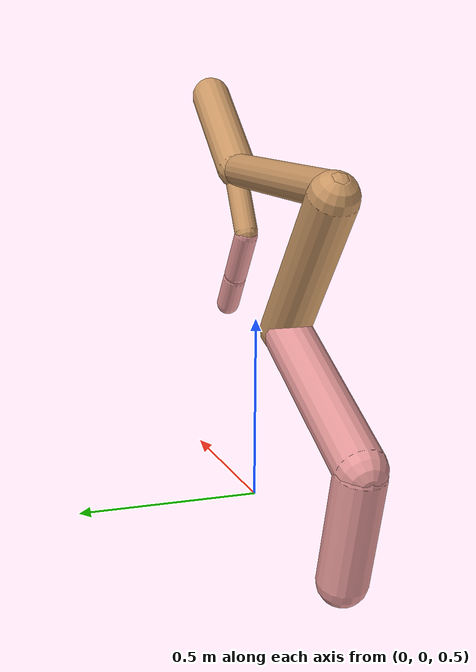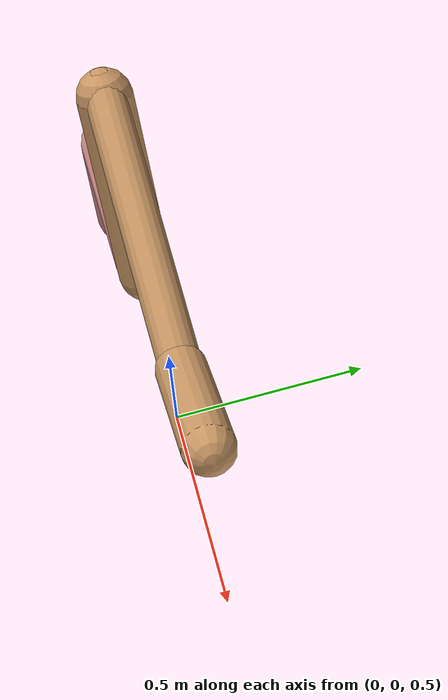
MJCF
<mujoco model="cheetah">
  <compiler angle="radian" coordinate="local" inertiafromgeom="true" settotalmass="14" />
  <default>
    <joint armature=".1" damping=".01" limited="true" solimplimit="0 .8 .03" solreflimit=".02 1" stiffness="8" />
    <geom conaffinity="0" condim="3" contype="1" friction="0.8 .1 .1" rgba="0.8 0.6 .4 1" solimp="0.0 0.8 0.01" solref="0.02 1" />
    <motor ctrllimited="true" ctrlrange="-1 1" />
  </default>
  <size nstack="300000" nuser_geom="1" />
  <option gravity="0 0 -9.81" timestep="0.01" />
  <worldbody>
    <body name="torso" pos="0.0 0.0 1.3950207202148839">
      <joint armature="0" axis="1 0 0" damping="0" limited="false" name="ignorex" pos="0 0 0" stiffness="0" type="slide" />
      <joint armature="0" axis="0 0 1" damping="0" limited="false" name="ignorez" pos="0 0 0" stiffness="0" type="slide" />
      <joint armature="0" axis="0 1 0" damping="0" limited="false" name="ignorey" pos="0 0 0" stiffness="0" type="hinge" />
      <geom fromto="-0.5 0.0 0.0 0.17877551535741126 0.0 0.0" name="torso" size="0.0456689279727606" type="capsule" />
      <geom axisangle="0 1 0 .87" name="head" pos="0.2787755153574113 0.0 0.1" size="0.05485620928697736 0.15" type="capsule" />

      <body name="bthigh" pos="-.5 0 0">
        <joint axis="0 1 0" damping="6" name="bthigh" pos="0 0 0" range="-.52 1.05" stiffness="240" type="hinge" />
        <geom axisangle="0 1 0 -3.8" name="bthigh" pos="0.15207240149036874 0.0 -0.19769412193747937" size="0.06307006050998454 0.2304050885009815" type="capsule" />
        <body name="bshin" pos="0.2641448029807375 0.0 -0.38538824387495874">
          <joint axis="0 1 0" damping="4.5" name="bshin" pos="0 0 0" range="-.785 .785" stiffness="180" type="hinge" />
          <geom axisangle="0 1 0 -2.03" name="bshin" pos="-0.2190227242121022 0.0 -0.1095113621060511" rgba="0.9 0.6 0.6 1" size="0.06307006050998454 0.23835009155273948" type="capsule" />
          <body name="bfoot" pos="-0.4380454484242044 0.0 -0.2190227242121022">
            <joint axis="0 1 0" damping="3" name="bfoot" pos="0 0 0" range="-.4 .785" stiffness="120" type="hinge" />
            <geom axisangle="0 1 0 -.27" name="bfoot" pos="0.0463589936313024 0.0 -0.1498940794078778" rgba="0.9 0.6 0.6 1" size="0.06307006050998454 0.1493660573730501" type="capsule" />
            <inertial mass="10" />
          </body>
        </body>
      </body>
      <body name="fthigh" pos="0.17877551535741132 0.0 0.0">
        <joint axis="0 1 0" damping="4.5" name="fthigh" pos="0 0 0" range="-1.5 0.8" stiffness="180" type="hinge" />
        <geom axisangle="0 1 0 .52" name="fthigh" pos="-0.04989554608158897 0.0 -0.0855352218541525" size="0.0322 0.0931" type="capsule" />
        <body name="fshin" pos="-0.09979109216317794 0.0 -0.171070443708305">
          <joint axis="0 1 0" damping="3" name="fshin" pos="0 0 0" range="-1.2 1.1" stiffness="120" type="hinge" />
          <geom axisangle="0 1 0 -.6" name="fshin" pos="0.046381400387749405 0.0 -0.06422040053688378" rgba="0.9 0.6 0.6 1" size="0.0322 0.07419999999999999" type="capsule" />
          <body name="ffoot" pos="0.09276280077549881 0.0 -0.12844080107376757">
            <joint axis="0 1 0" damping="1.5" name="ffoot" pos="0 0 0" range="-3.1 -0.3" stiffness="60" type="hinge" />
            <geom axisangle="0 1 0 -.6" name="ffoot" pos="0.033644090582416526 0.0 -0.05233525201709238" rgba="0.9 0.6 0.6 1" size="0.0322 0.049" type="capsule" />
            <inertial mass="10" />
          </body>
        </body>
      </body>
    </body>
  </worldbody>
  <actuator>
    <motor gear="120" joint="bthigh" name="bthigh" />
    <motor gear="90" joint="bshin" name="bshin" />
    <motor gear="60" joint="bfoot" name="bfoot" />
    <motor gear="120" joint="fthigh" name="fthigh" />
    <motor gear="60" joint="fshin" name="fshin" />
    <motor gear="30" joint="ffoot" name="ffoot" />
  </actuator>
</mujoco>
